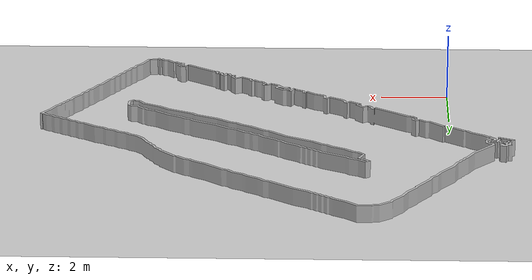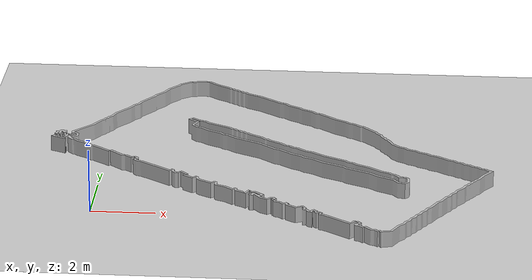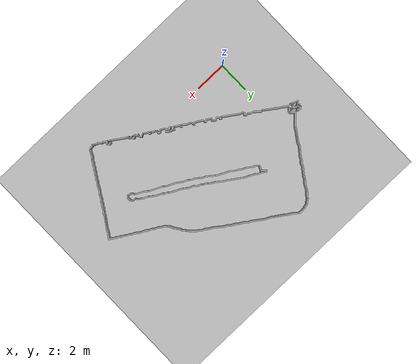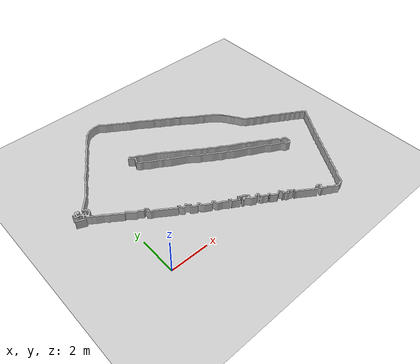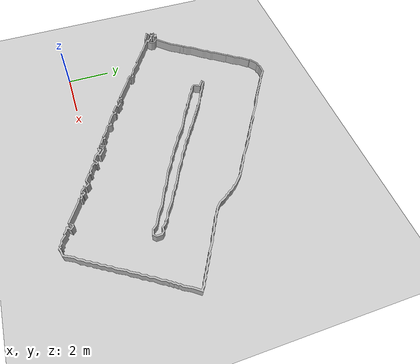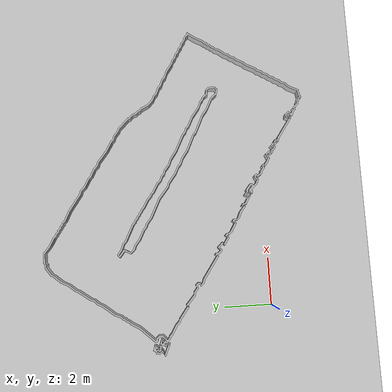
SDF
<?xml version="1.0"?>
<sdf version="1.4">
<world name="map_20261029_181111">
  <plugin name="gazebo_ros_state" filename="libgazebo_ros_state.so">
    <ros><namespace>/gazebo</namespace></ros>
  </plugin>
  <physics name="default_physics" default="1" type="ode">
    <max_step_size>0.002</max_step_size>
    <real_time_factor>1.0</real_time_factor>
    <real_time_update_rate>625</real_time_update_rate>
  </physics>
  <scene><ambient>0.5 0.5 0.5 1.0</ambient><shadows>0</shadows></scene>
  <include><uri>model://sun</uri><pose>0 0 15 0 0 0</pose><cast_shadows>false</cast_shadows></include>
  <model name="map_20261029_181111">
    <static>1</static>
    <link name="walls">
      <collision name="collision">
        <geometry><mesh><uri>model://racecar_description/meshes/map_20261029_181111.stl</uri></mesh></geometry>
      </collision>
      <visual name="visual">
        <geometry><mesh><uri>model://racecar_description/meshes/map_20261029_181111.stl</uri></mesh></geometry>
      </visual>
    </link>
  </model>
  <model name="ground_plane"><static>1</static><link name="link">
    <collision name="collision"><geometry><plane><normal>0 0 1</normal><size>100 100</size></plane></geometry>
    <surface><friction><ode><mu>1000</mu><mu2>500</mu2></ode></friction></surface></collision>
    <visual name="visual"><geometry><plane><normal>0 0 1</normal><size>100 100</size></plane></geometry></visual>
  </link></model>
</world>
</sdf>
